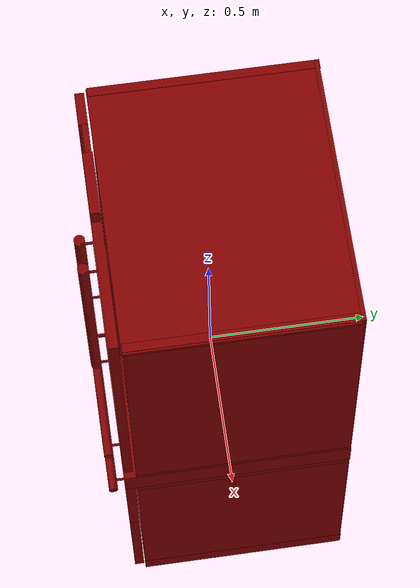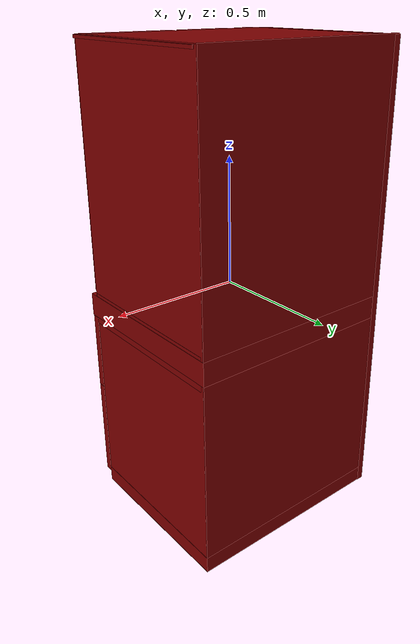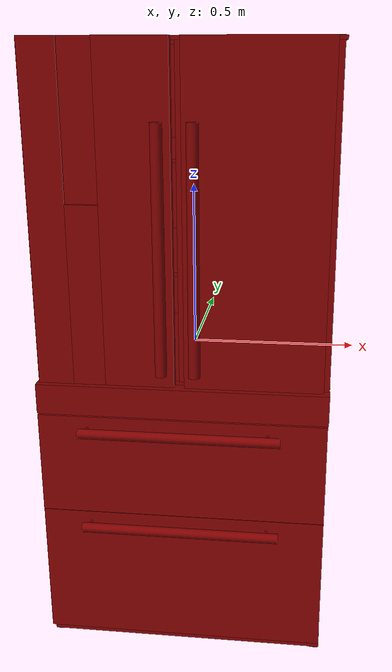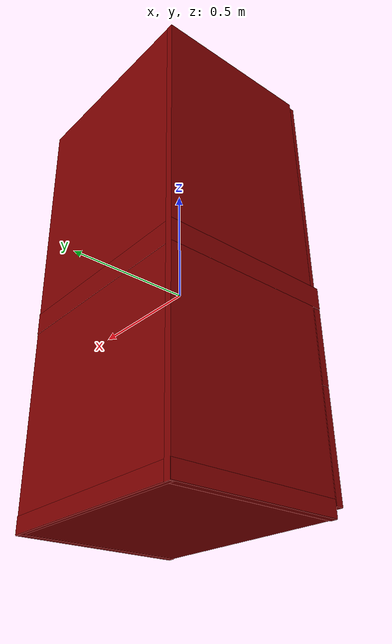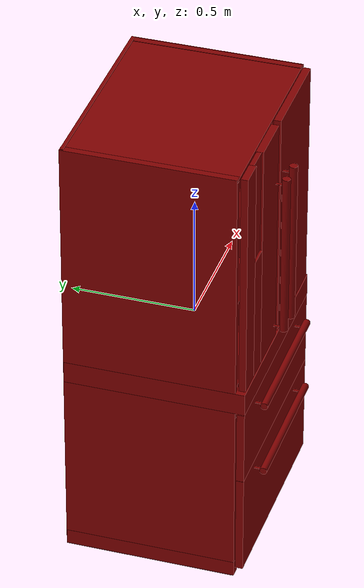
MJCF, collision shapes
<mujoco model="model">
  <compiler angle="radian"/>
  <asset>
    <mesh file="visuals/Body001.obj" name="Body001_vis"/>
    <mesh file="visuals/Body001_Clear.obj" name="Body001_Clear_vis"/>
    <mesh file="visuals/Door001.obj" name="Door001_vis"/>
    <mesh file="visuals/Door002.obj" name="Door002_vis"/>
    <mesh file="visuals/Drawer001.obj" name="Drawer001_vis"/>
    <mesh file="visuals/Drawer002.obj" name="Drawer002_vis"/>
    <texture file="visuals/T_BC001.png" name="Body001_material" type="2d"/>
    <material name="Body001_material" rgba="1 1 1 1.0" texture="Body001_material" shininess="0.8276031911373138" specular="1"/>
    <texture file="visuals/T_BC001.png" name="Body001_Clear_material" type="2d"/>
    <material name="Body001_Clear_material" rgba="1 1 1 0.2879999876022339" texture="Body001_Clear_material" shininess="0.5" specular="1"/>
    <texture file="visuals/T_BC001.png" name="Door001_material" type="2d"/>
    <material name="Door001_material" rgba="1 1 1 1.0" texture="Door001_material" shininess="0.8276031911373138" specular="1"/>
    <texture file="visuals/T_BC001.png" name="Door002_material" type="2d"/>
    <material name="Door002_material" rgba="1 1 1 1.0" texture="Door002_material" shininess="0.8276031911373138" specular="1"/>
    <texture file="visuals/T_BC001.png" name="Drawer001_material" type="2d"/>
    <material name="Drawer001_material" rgba="1 1 1 1.0" texture="Drawer001_material" shininess="0.8276031911373138" specular="1"/>
    <texture file="visuals/T_BC001.png" name="Drawer002_material" type="2d"/>
    <material name="Drawer002_material" rgba="1 1 1 1.0" texture="Drawer002_material" shininess="0.8276031911373138" specular="1"/>
  </asset>
  <default>
    <default class="visual">
      <geom conaffinity="0" contype="0" group="1" type="mesh"/>
    </default>
    <default class="collision">
      <geom group="0" rgba="0.5 0 0 0.5"/>
    </default>
    <default class="spawn">
      <geom group="0" rgba="1 1 1 0.5" contype="0" conaffinity="0"/>
      <site group="0" rgba="1 1 1 0.5"/>
    </default>
    <default class="region">
      <geom group="1" conaffinity="0" contype="0" rgba="0 1 0 0"/>
    </default>
  </default>
  <worldbody>
    <body>
      <body name="object">
        <geom mesh="Body001_vis" type="mesh" solimp="0.998 0.998 0.001" solref="0.001 1" density="100" friction="0.95 0.3 0.1" class="visual" material="Body001_material"/>
        <geom class="collision" type="box" pos="0.002094 0.382976 0.001265" size="0.4255010485649109 0.006990395486354828 0.9220288991928101" quat="1.0 0.0 0.0 0.0"/>
        <geom class="collision" type="box" pos="-0.413509 0.048048 0.000141" size="0.014205352403223515 0.3440885841846466 0.9200298190116882" quat="1.0 0.0 0.0 0.0"/>
        <geom class="collision" type="box" pos="0.414418 0.045154 -0.000010" size="0.013437991961836815 0.3413979113101959 0.9207538366317749" quat="1.0 0.0 0.0 0.0"/>
        <geom class="collision" type="box" pos="0.005273 0.038928 0.913650" size="0.42874079942703247 0.3374391794204712 0.005534396972507238" quat="1.0 0.0 0.0 0.0"/>
        <geom class="collision" type="box" pos="0.001016 0.038928 0.441188" size="0.007734355982393026 0.3373938798904419 0.4699624180793762" quat="1.0 0.0 0.0 0.0"/>
        <geom class="collision" type="box" pos="0.002426 0.041850 -0.033829" size="0.42588675022125244 0.33451229333877563 0.00662210863083601" quat="1.0 0.0 0.0 0.0"/>
        <geom class="collision" type="box" pos="0.000413 0.028411 -0.087233" size="0.42814555764198303 0.36267051100730896 0.04575930908322334" quat="1.0 0.0 0.0 0.0"/>
        <geom class="collision" type="box" pos="-0.386845 0.066955 -0.256359" size="0.021264592185616493 0.30940482020378113 0.004545573145151138" quat="1.0 0.0 0.0 0.0"/>
        <geom class="collision" type="box" pos="-0.386845 0.066354 -0.587861" size="0.021264592185616493 0.3100048899650574 0.004545561503618956" quat="1.0 0.0 0.0 0.0"/>
        <geom class="collision" type="box" pos="0.392552 0.066825 -0.256359" size="0.021264592185616493 0.3095318078994751 0.004545549396425486" quat="1.0 0.0 0.0 0.0"/>
        <geom class="collision" type="box" pos="0.392552 0.067075 -0.587861" size="0.021264592185616493 0.30928152799606323 0.004545537754893303" quat="1.0 0.0 0.0 0.0"/>
        <geom class="collision" type="box" pos="0.000413 0.046831 -0.886069" size="0.42814555764198303 0.3442509174346924 0.03157391771674156" quat="1.0 0.0 0.0 0.0"/>
        <geom class="collision" type="box" pos="0.002426 0.038928 -0.144110" size="0.42587530612945557 0.33742567896842957 0.013493909500539303" quat="1.0 0.0 0.0 0.0"/>
        <body name="Body001_Clear">
          <geom mesh="Body001_Clear_vis" type="mesh" solimp="0.998 0.998 0.001" solref="0.001 1" density="100" friction="0.95 0.3 0.1" class="visual" material="Body001_Clear_material"/>
          <geom class="collision" type="box" pos="0.005273 0.054498 0.600716" size="0.40634703636169434 0.32182344794273376 0.004772414918988943" quat="1.0 0.0 0.0 0.0"/>
          <geom class="collision" type="box" pos="0.005273 0.054625 0.284577" size="0.40634703636169434 0.32169708609580994 0.004772414918988943" quat="1.0 0.0 0.0 0.0"/>
        </body>
        <body name="Door001">
          <joint axis="0.0 0.0 -1.0" pos="-0.408418 -0.316476 0.490045" limited="true" name="Door001_joint" range="0.0 1.5707963267948966" type="hinge" damping="1" frictionloss="1" armature=".01" stiffness="0.05"/>
          <geom mesh="Door001_vis" type="mesh" solimp="0.998 0.998 0.001" solref="0.001 1" density="100" friction="0.95 0.3 0.1" class="visual" material="Door001_material"/>
          <geom class="collision" type="box" pos="-0.361935 -0.319352 0.443168" size="0.05205912888050079 0.014084827154874802 0.47649359703063965" quat="1.0 0.0 0.0 0.0"/>
          <geom class="collision" type="box" pos="-0.116273 -0.318192 0.443227" size="0.10008827596902847 0.015244950540363789 0.4764341711997986" quat="1.0 0.0 0.0 0.0"/>
          <geom class="collision" type="box" pos="-0.263711 -0.317830 0.226922" size="0.04796719551086426 0.015606094151735306 0.2602473497390747" quat="1.0 0.0 0.0 0.0"/>
          <geom class="collision" type="box" pos="-0.263711 -0.315436 0.703650" size="0.04796730726957321 0.009254291653633118 0.21574071049690247" quat="1.0 0.0 0.0 0.0"/>
          <geom class="collision" type="cylinder" pos="-0.045338 -0.374644 0.363454" size="0.016492286697030067 0.3457251191139221" quat="1.0 0.0 0.0 0.0"/>
          <geom class="collision" type="cylinder" pos="-0.045237 -0.348122 0.680010" size="0.004023279063403606 0.015247500501573086" quat="0.7071068286895752 0.7071067690849304 0.0 0.0"/>
          <geom class="collision" type="cylinder" pos="-0.045237 -0.348122 0.029685" size="0.004023279063403606 0.015247500501573086" quat="0.7071068286895752 0.7071067690849304 0.0 0.0"/>
        </body>
        <body name="Door002">
          <joint axis="0.0 0.0 1.0" pos="0.409709 -0.316476 0.490045" limited="true" name="Door002_joint" range="0.0 1.5707963267948966" type="hinge" damping="1" frictionloss="1" armature=".01" stiffness="0.05"/>
          <geom mesh="Door002_vis" type="mesh" solimp="0.998 0.998 0.001" solref="0.001 1" density="100" friction="0.95 0.3 0.1" class="visual" material="Door002_material"/>
          <geom class="collision" type="cylinder" pos="0.048757 -0.374740 0.363454" size="0.01653287559747696 0.3464663028717041" quat="1.0 0.0 0.0 0.0"/>
          <geom class="collision" type="cylinder" pos="0.048859 -0.348122 0.680216" size="0.004023279063403606 0.015247500501573086" quat="0.7071068286895752 0.7071067690849304 0.0 0.0"/>
          <geom class="collision" type="cylinder" pos="0.048619 -0.348122 0.029527" size="0.004023279063403606 0.015247500501573086" quat="0.7071068286895752 0.7071067690849304 0.0 0.0"/>
          <geom class="collision" type="box" pos="0.211691 -0.318803 0.443168" size="0.1986735761165619 0.014705928042531013 0.47649237513542175" quat="1.0 0.0 0.0 0.0"/>
        </body>
        <body name="Drawer001">
          <joint axis="0.0 -1.0 0.0" pos="0.000131 -0.021679 -0.291582" limited="true" name="Drawer001_joint" range="0.0 0.5" type="slide" damping="1" frictionloss="1" armature=".01" stiffness="0.05"/>
          <geom mesh="Drawer001_vis" type="mesh" solimp="0.998 0.998 0.001" solref="0.001 1" density="100" friction="0.95 0.3 0.1" class="visual" material="Drawer001_material"/>
          <geom class="collision" type="box" pos="-0.000057 -0.317847 -0.294349" size="0.42681750655174255 0.01577860116958618 0.15702296793460846" quat="1.0 0.0 0.0 0.0"/>
          <geom class="collision" type="box" pos="0.001395 -0.284751 -0.298823" size="0.3763910233974457 0.00999400857836008 0.1337537169456482" quat="1.0 0.0 0.0 0.0"/>
          <geom class="collision" type="box" pos="-0.021932 0.332119 -0.305154" size="0.32325467467308044 0.0122462073341012 0.09206433594226837" quat="1.0 0.0 0.0 0.0"/>
          <geom class="collision" type="box" pos="-0.334233 0.034531 -0.228524" size="0.03642168268561363 0.3103441298007965 0.01891649141907692" quat="1.0 0.0 0.0 0.0"/>
          <geom class="collision" type="box" pos="0.336962 0.034531 -0.228524" size="0.03642168268561363 0.3103441298007965 0.01891649141907692" quat="1.0 0.0 0.0 0.0"/>
          <geom class="collision" type="box" pos="0.324934 0.034531 -0.321282" size="0.023701008409261703 0.3103441298007965 0.0761997401714325" quat="1.0 0.0 0.0 0.0"/>
          <geom class="collision" type="box" pos="-0.321677 0.034531 -0.321207" size="0.023701008409261703 0.3103441298007965 0.07612433284521103" quat="1.0 0.0 0.0 0.0"/>
          <geom class="collision" type="box" pos="-0.021932 -0.263179 -0.305154" size="0.32325467467308044 0.0122462073341012 0.09206433594226837" quat="1.0 0.0 0.0 0.0"/>
          <geom class="collision" type="box" pos="0.001541 0.032101 -0.409158" size="0.32809150218963623 0.3086663782596588 0.014378750696778297" quat="1.0 0.0 0.0 0.0"/>
          <geom class="collision" type="cylinder" pos="-0.278331 -0.347890 -0.173542" size="0.004080971237272024 0.014836380258202553" quat="0.7071068286895752 0.7071067690849304 0.0 0.0"/>
          <geom class="collision" type="cylinder" pos="0.256198 -0.347961 -0.173542" size="0.004080971237272024 0.014836380258202553" quat="0.7071068286895752 0.7071067690849304 0.0 0.0"/>
          <geom class="collision" type="cylinder" pos="-0.001607 -0.373458 -0.173970" size="0.014763685874640942 0.2946333885192871" quat="0.7071068286895752 -0.0 0.7071067690849304 0.0"/>
        </body>
        <body name="Drawer002">
          <joint axis="0.0 -1.0 0.0" pos="0.000131 -0.021679 -0.663399" limited="true" name="Drawer002_joint" range="0.0 0.5" type="slide" damping="1" frictionloss="1" armature=".01" stiffness="0.05"/>
          <geom mesh="Drawer002_vis" type="mesh" solimp="0.998 0.998 0.001" solref="0.001 1" density="100" friction="0.95 0.3 0.1" class="visual" material="Drawer002_material"/>
          <geom class="collision" type="box" pos="0.000072 -0.317668 -0.665231" size="0.42664310336112976 0.015599459409713745 0.2122606337070465" quat="1.0 0.0 0.0 0.0"/>
          <geom class="collision" type="box" pos="0.001395 -0.284751 -0.670697" size="0.3763910233974457 0.00999400857836008 0.17610913515090942" quat="1.0 0.0 0.0 0.0"/>
          <geom class="collision" type="box" pos="0.002146 0.332119 -0.683388" size="0.32801109552383423 0.0122462073341012 0.138435959815979" quat="1.0 0.0 0.0 0.0"/>
          <geom class="collision" type="box" pos="-0.331095 0.034531 -0.563470" size="0.03328295424580574 0.3103441298007965 0.01891649141907692" quat="1.0 0.0 0.0 0.0"/>
          <geom class="collision" type="box" pos="0.333974 0.034531 -0.561758" size="0.03343387320637703 0.3103441298007965 0.016808902844786644" quat="1.0 0.0 0.0 0.0"/>
          <geom class="collision" type="box" pos="0.324934 0.034531 -0.683188" size="0.023701008409261703 0.3103441298007965 0.10686171799898148" quat="1.0 0.0 0.0 0.0"/>
          <geom class="collision" type="box" pos="-0.321677 0.034531 -0.673035" size="0.023701008409261703 0.3103441298007965 0.11731792241334915" quat="1.0 0.0 0.0 0.0"/>
          <geom class="collision" type="box" pos="-0.021932 -0.263179 -0.671162" size="0.32325467467308044 0.0122462073341012 0.14743882417678833" quat="1.0 0.0 0.0 0.0"/>
          <geom class="collision" type="box" pos="0.001493 0.034475 -0.808116" size="0.3281465768814087 0.3110469579696655 0.013698695227503777" quat="1.0 0.0 0.0 0.0"/>
          <geom class="collision" type="cylinder" pos="-0.001607 -0.373458 -0.484482" size="0.014763685874640942 0.2946333885192871" quat="0.7071068286895752 -0.0 0.7071067690849304 0.0"/>
          <geom class="collision" type="cylinder" pos="-0.278331 -0.347902 -0.486377" size="0.004080971237272024 0.014836380258202553" quat="0.7071068286895752 0.7071067690849304 0.0 0.0"/>
          <geom class="collision" type="cylinder" pos="0.256198 -0.348128 -0.486539" size="0.004080971237272024 0.014836380258202553" quat="0.7071068286895752 0.7071067690849304 0.0 0.0"/>
        </body>
        <geom class="region" name="reg_main" type="box" pos="0.0 0.0280715 0.0" size="0.42816 0.3623855 0.919804"/>
      </body>
    </body>
  </worldbody>
  <actuator>
    <motor name="Door001_joint_actuator" joint="Door001_joint" gear="50"/>
    <motor name="Door002_joint_actuator" joint="Door002_joint" gear="50"/>
    <motor name="Drawer001_joint_actuator" joint="Drawer001_joint" gear="50"/>
    <motor name="Drawer002_joint_actuator" joint="Drawer002_joint" gear="50"/>
  </actuator>
</mujoco>
